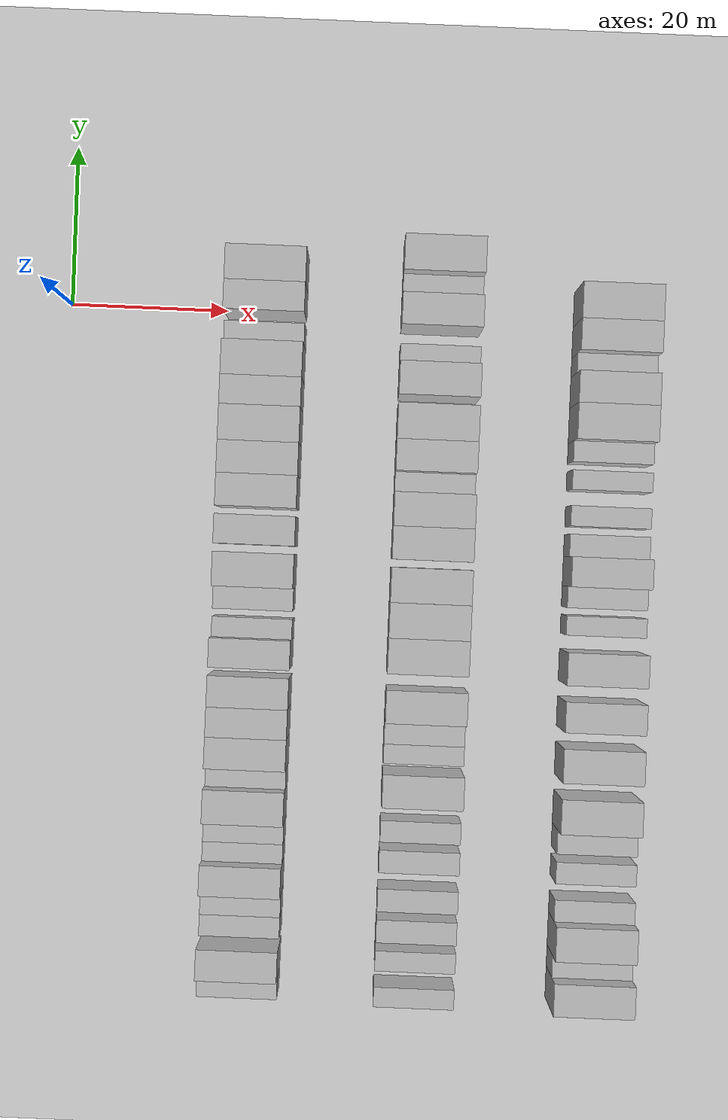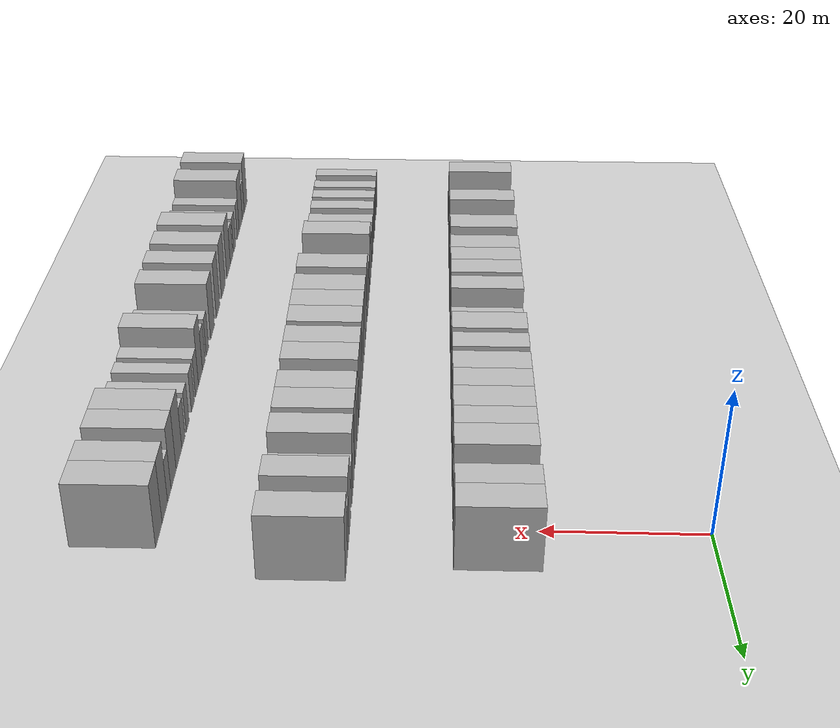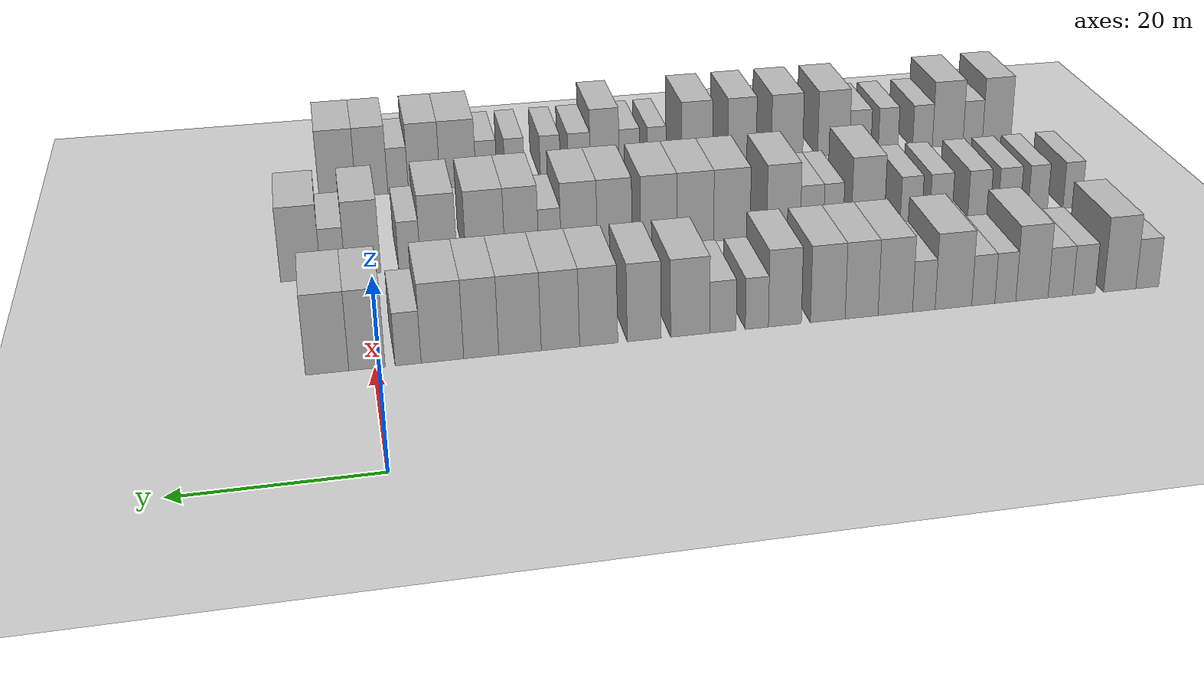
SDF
<sdf version="1.6">
 <world name="default">
  <include><name>ground_plane_1</name><uri>model://HANNAS_ground_plane</uri></include>
  <model name="building_63">
   <static>1</static>
   <pose>25.0000 -84.5989 0 0.000000 0.000000 0.000000</pose>
   <link name="link">
    <pose>0 0 3.00 0 0 0</pose>
    <collision name="collision"><geometry><box><size>10.0000 2.7197 6.0000</size></box></geometry></collision>
    <visual name="visual">
     <cast_shadows>0</cast_shadows>
     <geometry><box><size>10.0000 2.7197 6.0000</size></box></geometry>
     <material>
      <script>
       <uri>model://HANNAS_wall/materials/scripts</uri>
       <uri>model://HANNAS_wall/materials/textures</uri>
       <name>vrc/HANNAS_wall</name>
      </script>
     </material>
    </visual>
   </link>
  </model>
  <model name="building_64">
   <static>1</static>
   <pose>25.0000 -81.3277 0 0.000000 0.000000 0.000000</pose>
   <link name="link">
    <pose>0 0 4.50 0 0 0</pose>
    <collision name="collision"><geometry><box><size>10.0000 3.8228 9.0000</size></box></geometry></collision>
    <visual name="visual">
     <cast_shadows>0</cast_shadows>
     <geometry><box><size>10.0000 3.8228 9.0000</size></box></geometry>
     <material>
      <script>
       <uri>model://HANNAS_wall/materials/scripts</uri>
       <uri>model://HANNAS_wall/materials/textures</uri>
       <name>vrc/HANNAS_wall</name>
      </script>
     </material>
    </visual>
   </link>
  </model>
  <model name="building_65">
   <static>1</static>
   <pose>25.0000 -77.0960 0 0.000000 0.000000 0.000000</pose>
   <link name="link">
    <pose>0 0 3.00 0 0 0</pose>
    <collision name="collision"><geometry><box><size>10.0000 2.6407 6.0000</size></box></geometry></collision>
    <visual name="visual">
     <cast_shadows>0</cast_shadows>
     <geometry><box><size>10.0000 2.6407 6.0000</size></box></geometry>
     <material>
      <script>
       <uri>model://HANNAS_wall/materials/scripts</uri>
       <uri>model://HANNAS_wall/materials/textures</uri>
       <name>vrc/HANNAS_wall</name>
      </script>
     </material>
    </visual>
   </link>
  </model>
  <model name="building_66">
   <static>1</static>
   <pose>25.0000 -74.3329 0 0.000000 0.000000 0.000000</pose>
   <link name="link">
    <pose>0 0 3.00 0 0 0</pose>
    <collision name="collision"><geometry><box><size>10.0000 2.8854 6.0000</size></box></geometry></collision>
    <visual name="visual">
     <cast_shadows>0</cast_shadows>
     <geometry><box><size>10.0000 2.8854 6.0000</size></box></geometry>
     <material>
      <script>
       <uri>model://HANNAS_wall/materials/scripts</uri>
       <uri>model://HANNAS_wall/materials/textures</uri>
       <name>vrc/HANNAS_wall</name>
      </script>
     </material>
    </visual>
   </link>
  </model>
  <model name="building_67">
   <static>1</static>
   <pose>25.0000 -71.0144 0 0.000000 0.000000 0.000000</pose>
   <link name="link">
    <pose>0 0 4.50 0 0 0</pose>
    <collision name="collision"><geometry><box><size>10.0000 3.7516 9.0000</size></box></geometry></collision>
    <visual name="visual">
     <cast_shadows>0</cast_shadows>
     <geometry><box><size>10.0000 3.7516 9.0000</size></box></geometry>
     <material>
      <script>
       <uri>model://HANNAS_wall/materials/scripts</uri>
       <uri>model://HANNAS_wall/materials/textures</uri>
       <name>vrc/HANNAS_wall</name>
      </script>
     </material>
    </visual>
   </link>
  </model>
  <model name="building_68">
   <static>1</static>
   <pose>25.0000 -67.9297 0 0.000000 0.000000 0.000000</pose>
   <link name="link">
    <pose>0 0 3.00 0 0 0</pose>
    <collision name="collision"><geometry><box><size>10.0000 2.4178 6.0000</size></box></geometry></collision>
    <visual name="visual">
     <cast_shadows>0</cast_shadows>
     <geometry><box><size>10.0000 2.4178 6.0000</size></box></geometry>
     <material>
      <script>
       <uri>model://HANNAS_wall/materials/scripts</uri>
       <uri>model://HANNAS_wall/materials/textures</uri>
       <name>vrc/HANNAS_wall</name>
      </script>
     </material>
    </visual>
   </link>
  </model>
  <model name="building_69">
   <static>1</static>
   <pose>25.0000 -65.3898 0 0.000000 0.000000 0.000000</pose>
   <link name="link">
    <pose>0 0 3.00 0 0 0</pose>
    <collision name="collision"><geometry><box><size>10.0000 2.6619 6.0000</size></box></geometry></collision>
    <visual name="visual">
     <cast_shadows>0</cast_shadows>
     <geometry><box><size>10.0000 2.6619 6.0000</size></box></geometry>
     <material>
      <script>
       <uri>model://HANNAS_wall/materials/scripts</uri>
       <uri>model://HANNAS_wall/materials/textures</uri>
       <name>vrc/HANNAS_wall</name>
      </script>
     </material>
    </visual>
   </link>
  </model>
  <model name="building_70">
   <static>1</static>
   <pose>25.0000 -61.9693 0 0.000000 0.000000 0.000000</pose>
   <link name="link">
    <pose>0 0 4.50 0 0 0</pose>
    <collision name="collision"><geometry><box><size>10.0000 4.1791 9.0000</size></box></geometry></collision>
    <visual name="visual">
     <cast_shadows>0</cast_shadows>
     <geometry><box><size>10.0000 4.1791 9.0000</size></box></geometry>
     <material>
      <script>
       <uri>model://HANNAS_wall/materials/scripts</uri>
       <uri>model://HANNAS_wall/materials/textures</uri>
       <name>vrc/HANNAS_wall</name>
      </script>
     </material>
    </visual>
   </link>
  </model>
  <model name="building_71">
   <static>1</static>
   <pose>25.0000 -58.5983 0 0.000000 0.000000 0.000000</pose>
   <link name="link">
    <pose>0 0 3.00 0 0 0</pose>
    <collision name="collision"><geometry><box><size>10.0000 2.5630 6.0000</size></box></geometry></collision>
    <visual name="visual">
     <cast_shadows>0</cast_shadows>
     <geometry><box><size>10.0000 2.5630 6.0000</size></box></geometry>
     <material>
      <script>
       <uri>model://HANNAS_wall/materials/scripts</uri>
       <uri>model://HANNAS_wall/materials/textures</uri>
       <name>vrc/HANNAS_wall</name>
      </script>
     </material>
    </visual>
   </link>
  </model>
  <model name="building_72">
   <static>1</static>
   <pose>25.0000 -55.3773 0 0.000000 0.000000 0.000000</pose>
   <link name="link">
    <pose>0 0 4.50 0 0 0</pose>
    <collision name="collision"><geometry><box><size>10.0000 3.8790 9.0000</size></box></geometry></collision>
    <visual name="visual">
     <cast_shadows>0</cast_shadows>
     <geometry><box><size>10.0000 3.8790 9.0000</size></box></geometry>
     <material>
      <script>
       <uri>model://HANNAS_wall/materials/scripts</uri>
       <uri>model://HANNAS_wall/materials/textures</uri>
       <name>vrc/HANNAS_wall</name>
      </script>
     </material>
    </visual>
   </link>
  </model>
  <model name="building_73">
   <static>1</static>
   <pose>25.0000 -51.5959 0 0.000000 0.000000 0.000000</pose>
   <link name="link">
    <pose>0 0 4.50 0 0 0</pose>
    <collision name="collision"><geometry><box><size>10.0000 3.6839 9.0000</size></box></geometry></collision>
    <visual name="visual">
     <cast_shadows>0</cast_shadows>
     <geometry><box><size>10.0000 3.6839 9.0000</size></box></geometry>
     <material>
      <script>
       <uri>model://HANNAS_wall/materials/scripts</uri>
       <uri>model://HANNAS_wall/materials/textures</uri>
       <name>vrc/HANNAS_wall</name>
      </script>
     </material>
    </visual>
   </link>
  </model>
  <model name="building_74">
   <static>1</static>
   <pose>25.0000 -47.8274 0 0.000000 0.000000 0.000000</pose>
   <link name="link">
    <pose>0 0 4.50 0 0 0</pose>
    <collision name="collision"><geometry><box><size>10.0000 3.8532 9.0000</size></box></geometry></collision>
    <visual name="visual">
     <cast_shadows>0</cast_shadows>
     <geometry><box><size>10.0000 3.8532 9.0000</size></box></geometry>
     <material>
      <script>
       <uri>model://HANNAS_wall/materials/scripts</uri>
       <uri>model://HANNAS_wall/materials/textures</uri>
       <name>vrc/HANNAS_wall</name>
      </script>
     </material>
    </visual>
   </link>
  </model>
  <model name="building_75">
   <static>1</static>
   <pose>25.0000 -43.0913 0 0.000000 0.000000 0.000000</pose>
   <link name="link">
    <pose>0 0 4.50 0 0 0</pose>
    <collision name="collision"><geometry><box><size>10.0000 3.6191 9.0000</size></box></geometry></collision>
    <visual name="visual">
     <cast_shadows>0</cast_shadows>
     <geometry><box><size>10.0000 3.6191 9.0000</size></box></geometry>
     <material>
      <script>
       <uri>model://HANNAS_wall/materials/scripts</uri>
       <uri>model://HANNAS_wall/materials/textures</uri>
       <name>vrc/HANNAS_wall</name>
      </script>
     </material>
    </visual>
   </link>
  </model>
  <model name="building_76">
   <static>1</static>
   <pose>25.0000 -40.0207 0 0.000000 0.000000 0.000000</pose>
   <link name="link">
    <pose>0 0 3.00 0 0 0</pose>
    <collision name="collision"><geometry><box><size>10.0000 2.5221 6.0000</size></box></geometry></collision>
    <visual name="visual">
     <cast_shadows>0</cast_shadows>
     <geometry><box><size>10.0000 2.5221 6.0000</size></box></geometry>
     <material>
      <script>
       <uri>model://HANNAS_wall/materials/scripts</uri>
       <uri>model://HANNAS_wall/materials/textures</uri>
       <name>vrc/HANNAS_wall</name>
      </script>
     </material>
    </visual>
   </link>
  </model>
  <model name="building_77">
   <static>1</static>
   <pose>25.0000 -36.3404 0 0.000000 0.000000 0.000000</pose>
   <link name="link">
    <pose>0 0 3.00 0 0 0</pose>
    <collision name="collision"><geometry><box><size>10.0000 2.8384 6.0000</size></box></geometry></collision>
    <visual name="visual">
     <cast_shadows>0</cast_shadows>
     <geometry><box><size>10.0000 2.8384 6.0000</size></box></geometry>
     <material>
      <script>
       <uri>model://HANNAS_wall/materials/scripts</uri>
       <uri>model://HANNAS_wall/materials/textures</uri>
       <name>vrc/HANNAS_wall</name>
      </script>
     </material>
    </visual>
   </link>
  </model>
  <model name="building_78">
   <static>1</static>
   <pose>25.0000 -32.8028 0 0.000000 0.000000 0.000000</pose>
   <link name="link">
    <pose>0 0 4.50 0 0 0</pose>
    <collision name="collision"><geometry><box><size>10.0000 4.2369 9.0000</size></box></geometry></collision>
    <visual name="visual">
     <cast_shadows>0</cast_shadows>
     <geometry><box><size>10.0000 4.2369 9.0000</size></box></geometry>
     <material>
      <script>
       <uri>model://HANNAS_wall/materials/scripts</uri>
       <uri>model://HANNAS_wall/materials/textures</uri>
       <name>vrc/HANNAS_wall</name>
      </script>
     </material>
    </visual>
   </link>
  </model>
  <model name="building_79">
   <static>1</static>
   <pose>25.0000 -27.8712 0 0.000000 0.000000 0.000000</pose>
   <link name="link">
    <pose>0 0 4.50 0 0 0</pose>
    <collision name="collision"><geometry><box><size>10.0000 3.6263 9.0000</size></box></geometry></collision>
    <visual name="visual">
     <cast_shadows>0</cast_shadows>
     <geometry><box><size>10.0000 3.6263 9.0000</size></box></geometry>
     <material>
      <script>
       <uri>model://HANNAS_wall/materials/scripts</uri>
       <uri>model://HANNAS_wall/materials/textures</uri>
       <name>vrc/HANNAS_wall</name>
      </script>
     </material>
    </visual>
   </link>
  </model>
  <model name="building_80">
   <static>1</static>
   <pose>25.0000 -23.0450 0 0.000000 0.000000 0.000000</pose>
   <link name="link">
    <pose>0 0 4.50 0 0 0</pose>
    <collision name="collision"><geometry><box><size>10.0000 4.0261 9.0000</size></box></geometry></collision>
    <visual name="visual">
     <cast_shadows>0</cast_shadows>
     <geometry><box><size>10.0000 4.0261 9.0000</size></box></geometry>
     <material>
      <script>
       <uri>model://HANNAS_wall/materials/scripts</uri>
       <uri>model://HANNAS_wall/materials/textures</uri>
       <name>vrc/HANNAS_wall</name>
      </script>
     </material>
    </visual>
   </link>
  </model>
  <model name="building_81">
   <static>1</static>
   <pose>25.0000 -19.0231 0 0.000000 0.000000 0.000000</pose>
   <link name="link">
    <pose>0 0 4.50 0 0 0</pose>
    <collision name="collision"><geometry><box><size>10.0000 4.0177 9.0000</size></box></geometry></collision>
    <visual name="visual">
     <cast_shadows>0</cast_shadows>
     <geometry><box><size>10.0000 4.0177 9.0000</size></box></geometry>
     <material>
      <script>
       <uri>model://HANNAS_wall/materials/scripts</uri>
       <uri>model://HANNAS_wall/materials/textures</uri>
       <name>vrc/HANNAS_wall</name>
      </script>
     </material>
    </visual>
   </link>
  </model>
  <model name="building_82">
   <static>1</static>
   <pose>25.0000 -14.8100 0 0.000000 0.000000 0.000000</pose>
   <link name="link">
    <pose>0 0 4.50 0 0 0</pose>
    <collision name="collision"><geometry><box><size>10.0000 4.4085 9.0000</size></box></geometry></collision>
    <visual name="visual">
     <cast_shadows>0</cast_shadows>
     <geometry><box><size>10.0000 4.4085 9.0000</size></box></geometry>
     <material>
      <script>
       <uri>model://HANNAS_wall/materials/scripts</uri>
       <uri>model://HANNAS_wall/materials/textures</uri>
       <name>vrc/HANNAS_wall</name>
      </script>
     </material>
    </visual>
   </link>
  </model>
  <model name="building_83">
   <static>1</static>
   <pose>25.0000 -10.8007 0 0.000000 0.000000 0.000000</pose>
   <link name="link">
    <pose>0 0 4.50 0 0 0</pose>
    <collision name="collision"><geometry><box><size>10.0000 3.6102 9.0000</size></box></geometry></collision>
    <visual name="visual">
     <cast_shadows>0</cast_shadows>
     <geometry><box><size>10.0000 3.6102 9.0000</size></box></geometry>
     <material>
      <script>
       <uri>model://HANNAS_wall/materials/scripts</uri>
       <uri>model://HANNAS_wall/materials/textures</uri>
       <name>vrc/HANNAS_wall</name>
      </script>
     </material>
    </visual>
   </link>
  </model>
  <model name="building_84">
   <static>1</static>
   <pose>25.0000 -6.8217 0 0.000000 0.000000 0.000000</pose>
   <link name="link">
    <pose>0 0 4.50 0 0 0</pose>
    <collision name="collision"><geometry><box><size>10.0000 4.3478 9.0000</size></box></geometry></collision>
    <visual name="visual">
     <cast_shadows>0</cast_shadows>
     <geometry><box><size>10.0000 4.3478 9.0000</size></box></geometry>
     <material>
      <script>
       <uri>model://HANNAS_wall/materials/scripts</uri>
       <uri>model://HANNAS_wall/materials/textures</uri>
       <name>vrc/HANNAS_wall</name>
      </script>
     </material>
    </visual>
   </link>
  </model>
  <model name="building_85">
   <static>1</static>
   <pose>25.0000 -3.3266 0 0.000000 0.000000 0.000000</pose>
   <link name="link">
    <pose>0 0 3.00 0 0 0</pose>
    <collision name="collision"><geometry><box><size>10.0000 2.6424 6.0000</size></box></geometry></collision>
    <visual name="visual">
     <cast_shadows>0</cast_shadows>
     <geometry><box><size>10.0000 2.6424 6.0000</size></box></geometry>
     <material>
      <script>
       <uri>model://HANNAS_wall/materials/scripts</uri>
       <uri>model://HANNAS_wall/materials/textures</uri>
       <name>vrc/HANNAS_wall</name>
      </script>
     </material>
    </visual>
   </link>
  </model>
  <model name="building_86">
   <static>1</static>
   <pose>25.0000 0.8174 0 0.000000 0.000000 0.000000</pose>
   <link name="link">
    <pose>0 0 4.50 0 0 0</pose>
    <collision name="collision"><geometry><box><size>10.0000 3.6456 9.0000</size></box></geometry></collision>
    <visual name="visual">
     <cast_shadows>0</cast_shadows>
     <geometry><box><size>10.0000 3.6456 9.0000</size></box></geometry>
     <material>
      <script>
       <uri>model://HANNAS_wall/materials/scripts</uri>
       <uri>model://HANNAS_wall/materials/textures</uri>
       <name>vrc/HANNAS_wall</name>
      </script>
     </material>
    </visual>
   </link>
  </model>
  <model name="building_87">
   <static>1</static>
   <pose>25.0000 4.8028 0 0.000000 0.000000 0.000000</pose>
   <link name="link">
    <pose>0 0 4.50 0 0 0</pose>
    <collision name="collision"><geometry><box><size>10.0000 4.3252 9.0000</size></box></geometry></collision>
    <visual name="visual">
     <cast_shadows>0</cast_shadows>
     <geometry><box><size>10.0000 4.3252 9.0000</size></box></geometry>
     <material>
      <script>
       <uri>model://HANNAS_wall/materials/scripts</uri>
       <uri>model://HANNAS_wall/materials/textures</uri>
       <name>vrc/HANNAS_wall</name>
      </script>
     </material>
    </visual>
   </link>
  </model>
  <model name="building_255">
   <static>1</static>
   <pose>47.0000 -85.1042 0 0.000000 0.000000 0.000000</pose>
   <link name="link">
    <pose>0 0 3.00 0 0 0</pose>
    <collision name="collision"><geometry><box><size>10.0000 2.4518 6.0000</size></box></geometry></collision>
    <visual name="visual">
     <cast_shadows>0</cast_shadows>
     <geometry><box><size>10.0000 2.4518 6.0000</size></box></geometry>
     <material>
      <script>
       <uri>model://HANNAS_wall/materials/scripts</uri>
       <uri>model://HANNAS_wall/materials/textures</uri>
       <name>vrc/HANNAS_wall</name>
      </script>
     </material>
    </visual>
   </link>
  </model>
  <model name="building_256">
   <static>1</static>
   <pose>47.0000 -80.6278 0 0.000000 0.000000 0.000000</pose>
   <link name="link">
    <pose>0 0 3.00 0 0 0</pose>
    <collision name="collision"><geometry><box><size>10.0000 2.5009 6.0000</size></box></geometry></collision>
    <visual name="visual">
     <cast_shadows>0</cast_shadows>
     <geometry><box><size>10.0000 2.5009 6.0000</size></box></geometry>
     <material>
      <script>
       <uri>model://HANNAS_wall/materials/scripts</uri>
       <uri>model://HANNAS_wall/materials/textures</uri>
       <name>vrc/HANNAS_wall</name>
      </script>
     </material>
    </visual>
   </link>
  </model>
  <model name="building_257">
   <static>1</static>
   <pose>47.0000 -76.9506 0 0.000000 0.000000 0.000000</pose>
   <link name="link">
    <pose>0 0 3.00 0 0 0</pose>
    <collision name="collision"><geometry><box><size>10.0000 2.8536 6.0000</size></box></geometry></collision>
    <visual name="visual">
     <cast_shadows>0</cast_shadows>
     <geometry><box><size>10.0000 2.8536 6.0000</size></box></geometry>
     <material>
      <script>
       <uri>model://HANNAS_wall/materials/scripts</uri>
       <uri>model://HANNAS_wall/materials/textures</uri>
       <name>vrc/HANNAS_wall</name>
      </script>
     </material>
    </visual>
   </link>
  </model>
  <model name="building_258">
   <static>1</static>
   <pose>47.0000 -73.1065 0 0.000000 0.000000 0.000000</pose>
   <link name="link">
    <pose>0 0 3.00 0 0 0</pose>
    <collision name="collision"><geometry><box><size>10.0000 2.8346 6.0000</size></box></geometry></collision>
    <visual name="visual">
     <cast_shadows>0</cast_shadows>
     <geometry><box><size>10.0000 2.8346 6.0000</size></box></geometry>
     <material>
      <script>
       <uri>model://HANNAS_wall/materials/scripts</uri>
       <uri>model://HANNAS_wall/materials/textures</uri>
       <name>vrc/HANNAS_wall</name>
      </script>
     </material>
    </visual>
   </link>
  </model>
  <model name="building_259">
   <static>1</static>
   <pose>47.0000 -68.2813 0 0.000000 0.000000 0.000000</pose>
   <link name="link">
    <pose>0 0 3.00 0 0 0</pose>
    <collision name="collision"><geometry><box><size>10.0000 2.8158 6.0000</size></box></geometry></collision>
    <visual name="visual">
     <cast_shadows>0</cast_shadows>
     <geometry><box><size>10.0000 2.8158 6.0000</size></box></geometry>
     <material>
      <script>
       <uri>model://HANNAS_wall/materials/scripts</uri>
       <uri>model://HANNAS_wall/materials/textures</uri>
       <name>vrc/HANNAS_wall</name>
      </script>
     </material>
    </visual>
   </link>
  </model>
  <model name="building_260">
   <static>1</static>
   <pose>47.0000 -64.5319 0 0.000000 0.000000 0.000000</pose>
   <link name="link">
    <pose>0 0 3.00 0 0 0</pose>
    <collision name="collision"><geometry><box><size>10.0000 2.6830 6.0000</size></box></geometry></collision>
    <visual name="visual">
     <cast_shadows>0</cast_shadows>
     <geometry><box><size>10.0000 2.6830 6.0000</size></box></geometry>
     <material>
      <script>
       <uri>model://HANNAS_wall/materials/scripts</uri>
       <uri>model://HANNAS_wall/materials/textures</uri>
       <name>vrc/HANNAS_wall</name>
      </script>
     </material>
    </visual>
   </link>
  </model>
  <model name="building_261">
   <static>1</static>
   <pose>47.0000 -59.1503 0 0.000000 0.000000 0.000000</pose>
   <link name="link">
    <pose>0 0 4.50 0 0 0</pose>
    <collision name="collision"><geometry><box><size>10.0000 4.0802 9.0000</size></box></geometry></collision>
    <visual name="visual">
     <cast_shadows>0</cast_shadows>
     <geometry><box><size>10.0000 4.0802 9.0000</size></box></geometry>
     <material>
      <script>
       <uri>model://HANNAS_wall/materials/scripts</uri>
       <uri>model://HANNAS_wall/materials/textures</uri>
       <name>vrc/HANNAS_wall</name>
      </script>
     </material>
    </visual>
   </link>
  </model>
  <model name="building_262">
   <static>1</static>
   <pose>47.0000 -54.9024 0 0.000000 0.000000 0.000000</pose>
   <link name="link">
    <pose>0 0 3.00 0 0 0</pose>
    <collision name="collision"><geometry><box><size>10.0000 2.4155 6.0000</size></box></geometry></collision>
    <visual name="visual">
     <cast_shadows>0</cast_shadows>
     <geometry><box><size>10.0000 2.4155 6.0000</size></box></geometry>
     <material>
      <script>
       <uri>model://HANNAS_wall/materials/scripts</uri>
       <uri>model://HANNAS_wall/materials/textures</uri>
       <name>vrc/HANNAS_wall</name>
      </script>
     </material>
    </visual>
   </link>
  </model>
  <model name="building_263">
   <static>1</static>
   <pose>47.0000 -52.2753 0 0.000000 0.000000 0.000000</pose>
   <link name="link">
    <pose>0 0 3.00 0 0 0</pose>
    <collision name="collision"><geometry><box><size>10.0000 2.8387 6.0000</size></box></geometry></collision>
    <visual name="visual">
     <cast_shadows>0</cast_shadows>
     <geometry><box><size>10.0000 2.8387 6.0000</size></box></geometry>
     <material>
      <script>
       <uri>model://HANNAS_wall/materials/scripts</uri>
       <uri>model://HANNAS_wall/materials/textures</uri>
       <name>vrc/HANNAS_wall</name>
      </script>
     </material>
    </visual>
   </link>
  </model>
  <model name="building_264">
   <static>1</static>
   <pose>47.0000 -48.8167 0 0.000000 0.000000 0.000000</pose>
   <link name="link">
    <pose>0 0 4.50 0 0 0</pose>
    <collision name="collision"><geometry><box><size>10.0000 4.0785 9.0000</size></box></geometry></collision>
    <visual name="visual">
     <cast_shadows>0</cast_shadows>
     <geometry><box><size>10.0000 4.0785 9.0000</size></box></geometry>
     <material>
      <script>
       <uri>model://HANNAS_wall/materials/scripts</uri>
       <uri>model://HANNAS_wall/materials/textures</uri>
       <name>vrc/HANNAS_wall</name>
      </script>
     </material>
    </visual>
   </link>
  </model>
  <model name="building_265">
   <static>1</static>
   <pose>47.0000 -42.5929 0 0.000000 0.000000 0.000000</pose>
   <link name="link">
    <pose>0 0 4.50 0 0 0</pose>
    <collision name="collision"><geometry><box><size>10.0000 4.3690 9.0000</size></box></geometry></collision>
    <visual name="visual">
     <cast_shadows>0</cast_shadows>
     <geometry><box><size>10.0000 4.3690 9.0000</size></box></geometry>
     <material>
      <script>
       <uri>model://HANNAS_wall/materials/scripts</uri>
       <uri>model://HANNAS_wall/materials/textures</uri>
       <name>vrc/HANNAS_wall</name>
      </script>
     </material>
    </visual>
   </link>
  </model>
  <model name="building_266">
   <static>1</static>
   <pose>47.0000 -38.2317 0 0.000000 0.000000 0.000000</pose>
   <link name="link">
    <pose>0 0 4.50 0 0 0</pose>
    <collision name="collision"><geometry><box><size>10.0000 4.3534 9.0000</size></box></geometry></collision>
    <visual name="visual">
     <cast_shadows>0</cast_shadows>
     <geometry><box><size>10.0000 4.3534 9.0000</size></box></geometry>
     <material>
      <script>
       <uri>model://HANNAS_wall/materials/scripts</uri>
       <uri>model://HANNAS_wall/materials/textures</uri>
       <name>vrc/HANNAS_wall</name>
      </script>
     </material>
    </visual>
   </link>
  </model>
  <model name="building_267">
   <static>1</static>
   <pose>47.0000 -33.8957 0 0.000000 0.000000 0.000000</pose>
   <link name="link">
    <pose>0 0 4.50 0 0 0</pose>
    <collision name="collision"><geometry><box><size>10.0000 4.3185 9.0000</size></box></geometry></collision>
    <visual name="visual">
     <cast_shadows>0</cast_shadows>
     <geometry><box><size>10.0000 4.3185 9.0000</size></box></geometry>
     <material>
      <script>
       <uri>model://HANNAS_wall/materials/scripts</uri>
       <uri>model://HANNAS_wall/materials/textures</uri>
       <name>vrc/HANNAS_wall</name>
      </script>
     </material>
    </visual>
   </link>
  </model>
  <model name="building_268">
   <static>1</static>
   <pose>47.0000 -28.6967 0 0.000000 0.000000 0.000000</pose>
   <link name="link">
    <pose>0 0 4.50 0 0 0</pose>
    <collision name="collision"><geometry><box><size>10.0000 4.0796 9.0000</size></box></geometry></collision>
    <visual name="visual">
     <cast_shadows>0</cast_shadows>
     <geometry><box><size>10.0000 4.0796 9.0000</size></box></geometry>
     <material>
      <script>
       <uri>model://HANNAS_wall/materials/scripts</uri>
       <uri>model://HANNAS_wall/materials/textures</uri>
       <name>vrc/HANNAS_wall</name>
      </script>
     </material>
    </visual>
   </link>
  </model>
  <model name="building_269">
   <static>1</static>
   <pose>47.0000 -24.5548 0 0.000000 0.000000 0.000000</pose>
   <link name="link">
    <pose>0 0 4.50 0 0 0</pose>
    <collision name="collision"><geometry><box><size>10.0000 4.2042 9.0000</size></box></geometry></collision>
    <visual name="visual">
     <cast_shadows>0</cast_shadows>
     <geometry><box><size>10.0000 4.2042 9.0000</size></box></geometry>
     <material>
      <script>
       <uri>model://HANNAS_wall/materials/scripts</uri>
       <uri>model://HANNAS_wall/materials/textures</uri>
       <name>vrc/HANNAS_wall</name>
      </script>
     </material>
    </visual>
   </link>
  </model>
  <model name="building_270">
   <static>1</static>
   <pose>47.0000 -21.1628 0 0.000000 0.000000 0.000000</pose>
   <link name="link">
    <pose>0 0 3.00 0 0 0</pose>
    <collision name="collision"><geometry><box><size>10.0000 2.5796 6.0000</size></box></geometry></collision>
    <visual name="visual">
     <cast_shadows>0</cast_shadows>
     <geometry><box><size>10.0000 2.5796 6.0000</size></box></geometry>
     <material>
      <script>
       <uri>model://HANNAS_wall/materials/scripts</uri>
       <uri>model://HANNAS_wall/materials/textures</uri>
       <name>vrc/HANNAS_wall</name>
      </script>
     </material>
    </visual>
   </link>
  </model>
  <model name="building_271">
   <static>1</static>
   <pose>47.0000 -17.9238 0 0.000000 0.000000 0.000000</pose>
   <link name="link">
    <pose>0 0 4.50 0 0 0</pose>
    <collision name="collision"><geometry><box><size>10.0000 3.8984 9.0000</size></box></geometry></collision>
    <visual name="visual">
     <cast_shadows>0</cast_shadows>
     <geometry><box><size>10.0000 3.8984 9.0000</size></box></geometry>
     <material>
      <script>
       <uri>model://HANNAS_wall/materials/scripts</uri>
       <uri>model://HANNAS_wall/materials/textures</uri>
       <name>vrc/HANNAS_wall</name>
      </script>
     </material>
    </visual>
   </link>
  </model>
  <model name="building_272">
   <static>1</static>
   <pose>47.0000 -13.7526 0 0.000000 0.000000 0.000000</pose>
   <link name="link">
    <pose>0 0 4.50 0 0 0</pose>
    <collision name="collision"><geometry><box><size>10.0000 4.4441 9.0000</size></box></geometry></collision>
    <visual name="visual">
     <cast_shadows>0</cast_shadows>
     <geometry><box><size>10.0000 4.4441 9.0000</size></box></geometry>
     <material>
      <script>
       <uri>model://HANNAS_wall/materials/scripts</uri>
       <uri>model://HANNAS_wall/materials/textures</uri>
       <name>vrc/HANNAS_wall</name>
      </script>
     </material>
    </visual>
   </link>
  </model>
  <model name="building_273">
   <static>1</static>
   <pose>47.0000 -8.4645 0 0.000000 0.000000 0.000000</pose>
   <link name="link">
    <pose>0 0 4.50 0 0 0</pose>
    <collision name="collision"><geometry><box><size>10.0000 4.1322 9.0000</size></box></geometry></collision>
    <visual name="visual">
     <cast_shadows>0</cast_shadows>
     <geometry><box><size>10.0000 4.1322 9.0000</size></box></geometry>
     <material>
      <script>
       <uri>model://HANNAS_wall/materials/scripts</uri>
       <uri>model://HANNAS_wall/materials/textures</uri>
       <name>vrc/HANNAS_wall</name>
      </script>
     </material>
    </visual>
   </link>
  </model>
  <model name="building_274">
   <static>1</static>
   <pose>47.0000 -5.1748 0 0.000000 0.000000 0.000000</pose>
   <link name="link">
    <pose>0 0 3.00 0 0 0</pose>
    <collision name="collision"><geometry><box><size>10.0000 2.4472 6.0000</size></box></geometry></collision>
    <visual name="visual">
     <cast_shadows>0</cast_shadows>
     <geometry><box><size>10.0000 2.4472 6.0000</size></box></geometry>
     <material>
      <script>
       <uri>model://HANNAS_wall/materials/scripts</uri>
       <uri>model://HANNAS_wall/materials/textures</uri>
       <name>vrc/HANNAS_wall</name>
      </script>
     </material>
    </visual>
   </link>
  </model>
  <model name="building_275">
   <static>1</static>
   <pose>47.0000 0.0235 0 0.000000 0.000000 0.000000</pose>
   <link name="link">
    <pose>0 0 4.50 0 0 0</pose>
    <collision name="collision"><geometry><box><size>10.0000 3.9494 9.0000</size></box></geometry></collision>
    <visual name="visual">
     <cast_shadows>0</cast_shadows>
     <geometry><box><size>10.0000 3.9494 9.0000</size></box></geometry>
     <material>
      <script>
       <uri>model://HANNAS_wall/materials/scripts</uri>
       <uri>model://HANNAS_wall/materials/textures</uri>
       <name>vrc/HANNAS_wall</name>
      </script>
     </material>
    </visual>
   </link>
  </model>
  <model name="building_276">
   <static>1</static>
   <pose>47.0000 3.3474 0 0.000000 0.000000 0.000000</pose>
   <link name="link">
    <pose>0 0 3.00 0 0 0</pose>
    <collision name="collision"><geometry><box><size>10.0000 2.6984 6.0000</size></box></geometry></collision>
    <visual name="visual">
     <cast_shadows>0</cast_shadows>
     <geometry><box><size>10.0000 2.6984 6.0000</size></box></geometry>
     <material>
      <script>
       <uri>model://HANNAS_wall/materials/scripts</uri>
       <uri>model://HANNAS_wall/materials/textures</uri>
       <name>vrc/HANNAS_wall</name>
      </script>
     </material>
    </visual>
   </link>
  </model>
  <model name="building_277">
   <static>1</static>
   <pose>47.0000 6.9128 0 0.000000 0.000000 0.000000</pose>
   <link name="link">
    <pose>0 0 4.50 0 0 0</pose>
    <collision name="collision"><geometry><box><size>10.0000 4.4323 9.0000</size></box></geometry></collision>
    <visual name="visual">
     <cast_shadows>0</cast_shadows>
     <geometry><box><size>10.0000 4.4323 9.0000</size></box></geometry>
     <material>
      <script>
       <uri>model://HANNAS_wall/materials/scripts</uri>
       <uri>model://HANNAS_wall/materials/textures</uri>
       <name>vrc/HANNAS_wall</name>
      </script>
     </material>
    </visual>
   </link>
  </model>
  <model name="building_446">
   <static>1</static>
   <pose>69.0000 -83.7840 0 0.000000 0.000000 0.000000</pose>
   <link name="link">
    <pose>0 0 4.50 0 0 0</pose>
    <collision name="collision"><geometry><box><size>10.0000 3.9956 9.0000</size></box></geometry></collision>
    <visual name="visual">
     <cast_shadows>0</cast_shadows>
     <geometry><box><size>10.0000 3.9956 9.0000</size></box></geometry>
     <material>
      <script>
       <uri>model://HANNAS_wall/materials/scripts</uri>
       <uri>model://HANNAS_wall/materials/textures</uri>
       <name>vrc/HANNAS_wall</name>
      </script>
     </material>
    </visual>
   </link>
  </model>
  <model name="building_447">
   <static>1</static>
   <pose>69.0000 -80.4386 0 0.000000 0.000000 0.000000</pose>
   <link name="link">
    <pose>0 0 3.00 0 0 0</pose>
    <collision name="collision"><geometry><box><size>10.0000 2.6952 6.0000</size></box></geometry></collision>
    <visual name="visual">
     <cast_shadows>0</cast_shadows>
     <geometry><box><size>10.0000 2.6952 6.0000</size></box></geometry>
     <material>
      <script>
       <uri>model://HANNAS_wall/materials/scripts</uri>
       <uri>model://HANNAS_wall/materials/textures</uri>
       <name>vrc/HANNAS_wall</name>
      </script>
     </material>
    </visual>
   </link>
  </model>
  <model name="building_448">
   <static>1</static>
   <pose>69.0000 -76.9734 0 0.000000 0.000000 0.000000</pose>
   <link name="link">
    <pose>0 0 4.50 0 0 0</pose>
    <collision name="collision"><geometry><box><size>10.0000 4.2352 9.0000</size></box></geometry></collision>
    <visual name="visual">
     <cast_shadows>0</cast_shadows>
     <geometry><box><size>10.0000 4.2352 9.0000</size></box></geometry>
     <material>
      <script>
       <uri>model://HANNAS_wall/materials/scripts</uri>
       <uri>model://HANNAS_wall/materials/textures</uri>
       <name>vrc/HANNAS_wall</name>
      </script>
     </material>
    </visual>
   </link>
  </model>
  <model name="building_449">
   <static>1</static>
   <pose>69.0000 -73.4980 0 0.000000 0.000000 0.000000</pose>
   <link name="link">
    <pose>0 0 3.00 0 0 0</pose>
    <collision name="collision"><geometry><box><size>10.0000 2.7157 6.0000</size></box></geometry></collision>
    <visual name="visual">
     <cast_shadows>0</cast_shadows>
     <geometry><box><size>10.0000 2.7157 6.0000</size></box></geometry>
     <material>
      <script>
       <uri>model://HANNAS_wall/materials/scripts</uri>
       <uri>model://HANNAS_wall/materials/textures</uri>
       <name>vrc/HANNAS_wall</name>
      </script>
     </material>
    </visual>
   </link>
  </model>
  <model name="building_450">
   <static>1</static>
   <pose>69.0000 -68.7933 0 0.000000 0.000000 0.000000</pose>
   <link name="link">
    <pose>0 0 3.00 0 0 0</pose>
    <collision name="collision"><geometry><box><size>10.0000 2.6936 6.0000</size></box></geometry></collision>
    <visual name="visual">
     <cast_shadows>0</cast_shadows>
     <geometry><box><size>10.0000 2.6936 6.0000</size></box></geometry>
     <material>
      <script>
       <uri>model://HANNAS_wall/materials/scripts</uri>
       <uri>model://HANNAS_wall/materials/textures</uri>
       <name>vrc/HANNAS_wall</name>
      </script>
     </material>
    </visual>
   </link>
  </model>
  <model name="building_451">
   <static>1</static>
   <pose>69.0000 -64.9859 0 0.000000 0.000000 0.000000</pose>
   <link name="link">
    <pose>0 0 3.00 0 0 0</pose>
    <collision name="collision"><geometry><box><size>10.0000 2.9212 6.0000</size></box></geometry></collision>
    <visual name="visual">
     <cast_shadows>0</cast_shadows>
     <geometry><box><size>10.0000 2.9212 6.0000</size></box></geometry>
     <material>
      <script>
       <uri>model://HANNAS_wall/materials/scripts</uri>
       <uri>model://HANNAS_wall/materials/textures</uri>
       <name>vrc/HANNAS_wall</name>
      </script>
     </material>
    </visual>
   </link>
  </model>
  <model name="building_452">
   <static>1</static>
   <pose>69.0000 -61.3846 0 0.000000 0.000000 0.000000</pose>
   <link name="link">
    <pose>0 0 4.50 0 0 0</pose>
    <collision name="collision"><geometry><box><size>10.0000 4.2813 9.0000</size></box></geometry></collision>
    <visual name="visual">
     <cast_shadows>0</cast_shadows>
     <geometry><box><size>10.0000 4.2813 9.0000</size></box></geometry>
     <material>
      <script>
       <uri>model://HANNAS_wall/materials/scripts</uri>
       <uri>model://HANNAS_wall/materials/textures</uri>
       <name>vrc/HANNAS_wall</name>
      </script>
     </material>
    </visual>
   </link>
  </model>
  <model name="building_453">
   <static>1</static>
   <pose>69.0000 -55.1537 0 0.000000 0.000000 0.000000</pose>
   <link name="link">
    <pose>0 0 4.50 0 0 0</pose>
    <collision name="collision"><geometry><box><size>10.0000 4.1803 9.0000</size></box></geometry></collision>
    <visual name="visual">
     <cast_shadows>0</cast_shadows>
     <geometry><box><size>10.0000 4.1803 9.0000</size></box></geometry>
     <material>
      <script>
       <uri>model://HANNAS_wall/materials/scripts</uri>
       <uri>model://HANNAS_wall/materials/textures</uri>
       <name>vrc/HANNAS_wall</name>
      </script>
     </material>
    </visual>
   </link>
  </model>
  <model name="building_454">
   <static>1</static>
   <pose>69.0000 -49.1777 0 0.000000 0.000000 0.000000</pose>
   <link name="link">
    <pose>0 0 4.50 0 0 0</pose>
    <collision name="collision"><geometry><box><size>10.0000 3.7717 9.0000</size></box></geometry></collision>
    <visual name="visual">
     <cast_shadows>0</cast_shadows>
     <geometry><box><size>10.0000 3.7717 9.0000</size></box></geometry>
     <material>
      <script>
       <uri>model://HANNAS_wall/materials/scripts</uri>
       <uri>model://HANNAS_wall/materials/textures</uri>
       <name>vrc/HANNAS_wall</name>
      </script>
     </material>
    </visual>
   </link>
  </model>
  <model name="building_455">
   <static>1</static>
   <pose>69.0000 -43.2757 0 0.000000 0.000000 0.000000</pose>
   <link name="link">
    <pose>0 0 4.50 0 0 0</pose>
    <collision name="collision"><geometry><box><size>10.0000 4.0324 9.0000</size></box></geometry></collision>
    <visual name="visual">
     <cast_shadows>0</cast_shadows>
     <geometry><box><size>10.0000 4.0324 9.0000</size></box></geometry>
     <material>
      <script>
       <uri>model://HANNAS_wall/materials/scripts</uri>
       <uri>model://HANNAS_wall/materials/textures</uri>
       <name>vrc/HANNAS_wall</name>
      </script>
     </material>
    </visual>
   </link>
  </model>
  <model name="building_456">
   <static>1</static>
   <pose>69.0000 -38.0565 0 0.000000 0.000000 0.000000</pose>
   <link name="link">
    <pose>0 0 3.00 0 0 0</pose>
    <collision name="collision"><geometry><box><size>10.0000 2.4060 6.0000</size></box></geometry></collision>
    <visual name="visual">
     <cast_shadows>0</cast_shadows>
     <geometry><box><size>10.0000 2.4060 6.0000</size></box></geometry>
     <material>
      <script>
       <uri>model://HANNAS_wall/materials/scripts</uri>
       <uri>model://HANNAS_wall/materials/textures</uri>
       <name>vrc/HANNAS_wall</name>
      </script>
     </material>
    </visual>
   </link>
  </model>
  <model name="building_457">
   <static>1</static>
   <pose>69.0000 -34.5312 0 0.000000 0.000000 0.000000</pose>
   <link name="link">
    <pose>0 0 3.00 0 0 0</pose>
    <collision name="collision"><geometry><box><size>10.0000 2.6448 6.0000</size></box></geometry></collision>
    <visual name="visual">
     <cast_shadows>0</cast_shadows>
     <geometry><box><size>10.0000 2.6448 6.0000</size></box></geometry>
     <material>
      <script>
       <uri>model://HANNAS_wall/materials/scripts</uri>
       <uri>model://HANNAS_wall/materials/textures</uri>
       <name>vrc/HANNAS_wall</name>
      </script>
     </material>
    </visual>
   </link>
  </model>
  <model name="building_458">
   <static>1</static>
   <pose>69.0000 -31.3596 0 0.000000 0.000000 0.000000</pose>
   <link name="link">
    <pose>0 0 4.50 0 0 0</pose>
    <collision name="collision"><geometry><box><size>10.0000 3.6983 9.0000</size></box></geometry></collision>
    <visual name="visual">
     <cast_shadows>0</cast_shadows>
     <geometry><box><size>10.0000 3.6983 9.0000</size></box></geometry>
     <material>
      <script>
       <uri>model://HANNAS_wall/materials/scripts</uri>
       <uri>model://HANNAS_wall/materials/textures</uri>
       <name>vrc/HANNAS_wall</name>
      </script>
     </material>
    </visual>
   </link>
  </model>
  <model name="building_459">
   <static>1</static>
   <pose>69.0000 -28.1081 0 0.000000 0.000000 0.000000</pose>
   <link name="link">
    <pose>0 0 3.00 0 0 0</pose>
    <collision name="collision"><geometry><box><size>10.0000 2.8048 6.0000</size></box></geometry></collision>
    <visual name="visual">
     <cast_shadows>0</cast_shadows>
     <geometry><box><size>10.0000 2.8048 6.0000</size></box></geometry>
     <material>
      <script>
       <uri>model://HANNAS_wall/materials/scripts</uri>
       <uri>model://HANNAS_wall/materials/textures</uri>
       <name>vrc/HANNAS_wall</name>
      </script>
     </material>
    </visual>
   </link>
  </model>
  <model name="building_460">
   <static>1</static>
   <pose>69.0000 -24.4335 0 0.000000 0.000000 0.000000</pose>
   <link name="link">
    <pose>0 0 3.00 0 0 0</pose>
    <collision name="collision"><geometry><box><size>10.0000 2.5443 6.0000</size></box></geometry></collision>
    <visual name="visual">
     <cast_shadows>0</cast_shadows>
     <geometry><box><size>10.0000 2.5443 6.0000</size></box></geometry>
     <material>
      <script>
       <uri>model://HANNAS_wall/materials/scripts</uri>
       <uri>model://HANNAS_wall/materials/textures</uri>
       <name>vrc/HANNAS_wall</name>
      </script>
     </material>
    </visual>
   </link>
  </model>
  <model name="building_461">
   <static>1</static>
   <pose>69.0000 -19.9342 0 0.000000 0.000000 0.000000</pose>
   <link name="link">
    <pose>0 0 3.00 0 0 0</pose>
    <collision name="collision"><geometry><box><size>10.0000 2.4543 6.0000</size></box></geometry></collision>
    <visual name="visual">
     <cast_shadows>0</cast_shadows>
     <geometry><box><size>10.0000 2.4543 6.0000</size></box></geometry>
     <material>
      <script>
       <uri>model://HANNAS_wall/materials/scripts</uri>
       <uri>model://HANNAS_wall/materials/textures</uri>
       <name>vrc/HANNAS_wall</name>
      </script>
     </material>
    </visual>
   </link>
  </model>
  <model name="building_462">
   <static>1</static>
   <pose>69.0000 -16.4004 0 0.000000 0.000000 0.000000</pose>
   <link name="link">
    <pose>0 0 3.00 0 0 0</pose>
    <collision name="collision"><geometry><box><size>10.0000 2.6133 6.0000</size></box></geometry></collision>
    <visual name="visual">
     <cast_shadows>0</cast_shadows>
     <geometry><box><size>10.0000 2.6133 6.0000</size></box></geometry>
     <material>
      <script>
       <uri>model://HANNAS_wall/materials/scripts</uri>
       <uri>model://HANNAS_wall/materials/textures</uri>
       <name>vrc/HANNAS_wall</name>
      </script>
     </material>
    </visual>
   </link>
  </model>
  <model name="building_463">
   <static>1</static>
   <pose>69.0000 -12.8520 0 0.000000 0.000000 0.000000</pose>
   <link name="link">
    <pose>0 0 4.50 0 0 0</pose>
    <collision name="collision"><geometry><box><size>10.0000 4.4836 9.0000</size></box></geometry></collision>
    <visual name="visual">
     <cast_shadows>0</cast_shadows>
     <geometry><box><size>10.0000 4.4836 9.0000</size></box></geometry>
     <material>
      <script>
       <uri>model://HANNAS_wall/materials/scripts</uri>
       <uri>model://HANNAS_wall/materials/textures</uri>
       <name>vrc/HANNAS_wall</name>
      </script>
     </material>
    </visual>
   </link>
  </model>
  <model name="building_464">
   <static>1</static>
   <pose>69.0000 -8.6474 0 0.000000 0.000000 0.000000</pose>
   <link name="link">
    <pose>0 0 4.50 0 0 0</pose>
    <collision name="collision"><geometry><box><size>10.0000 3.9256 9.0000</size></box></geometry></collision>
    <visual name="visual">
     <cast_shadows>0</cast_shadows>
     <geometry><box><size>10.0000 3.9256 9.0000</size></box></geometry>
     <material>
      <script>
       <uri>model://HANNAS_wall/materials/scripts</uri>
       <uri>model://HANNAS_wall/materials/textures</uri>
       <name>vrc/HANNAS_wall</name>
      </script>
     </material>
    </visual>
   </link>
  </model>
  <model name="building_465">
   <static>1</static>
   <pose>69.0000 -5.4327 0 0.000000 0.000000 0.000000</pose>
   <link name="link">
    <pose>0 0 3.00 0 0 0</pose>
    <collision name="collision"><geometry><box><size>10.0000 2.5038 6.0000</size></box></geometry></collision>
    <visual name="visual">
     <cast_shadows>0</cast_shadows>
     <geometry><box><size>10.0000 2.5038 6.0000</size></box></geometry>
     <material>
      <script>
       <uri>model://HANNAS_wall/materials/scripts</uri>
       <uri>model://HANNAS_wall/materials/textures</uri>
       <name>vrc/HANNAS_wall</name>
      </script>
     </material>
    </visual>
   </link>
  </model>
  <model name="building_466">
   <static>1</static>
   <pose>69.0000 -2.2356 0 0.000000 0.000000 0.000000</pose>
   <link name="link">
    <pose>0 0 4.50 0 0 0</pose>
    <collision name="collision"><geometry><box><size>10.0000 3.8904 9.0000</size></box></geometry></collision>
    <visual name="visual">
     <cast_shadows>0</cast_shadows>
     <geometry><box><size>10.0000 3.8904 9.0000</size></box></geometry>
     <material>
      <script>
       <uri>model://HANNAS_wall/materials/scripts</uri>
       <uri>model://HANNAS_wall/materials/textures</uri>
       <name>vrc/HANNAS_wall</name>
      </script>
     </material>
    </visual>
   </link>
  </model>
  <model name="building_467">
   <static>1</static>
   <pose>69.0000 1.9438 0 0.000000 0.000000 0.000000</pose>
   <link name="link">
    <pose>0 0 4.50 0 0 0</pose>
    <collision name="collision"><geometry><box><size>10.0000 4.4685 9.0000</size></box></geometry></collision>
    <visual name="visual">
     <cast_shadows>0</cast_shadows>
     <geometry><box><size>10.0000 4.4685 9.0000</size></box></geometry>
     <material>
      <script>
       <uri>model://HANNAS_wall/materials/scripts</uri>
       <uri>model://HANNAS_wall/materials/textures</uri>
       <name>vrc/HANNAS_wall</name>
      </script>
     </material>
    </visual>
   </link>
  </model>
 </world>
</sdf>
